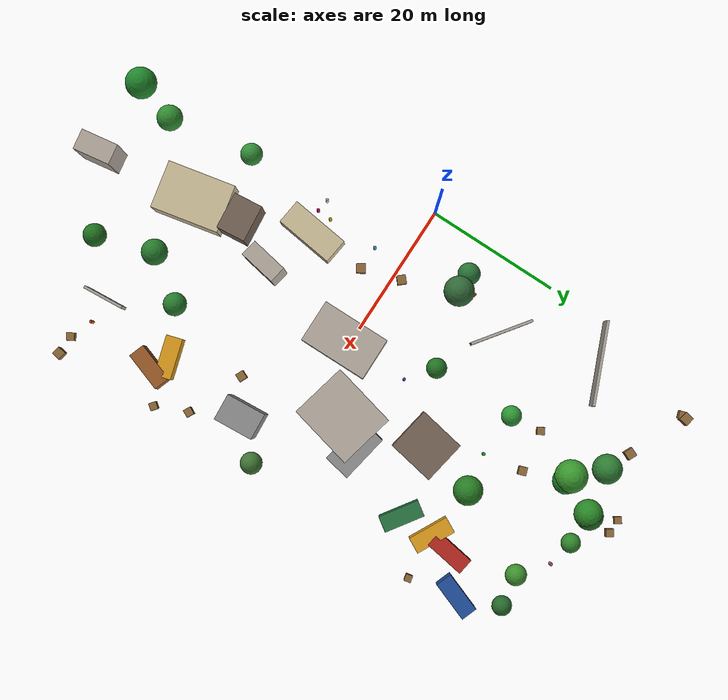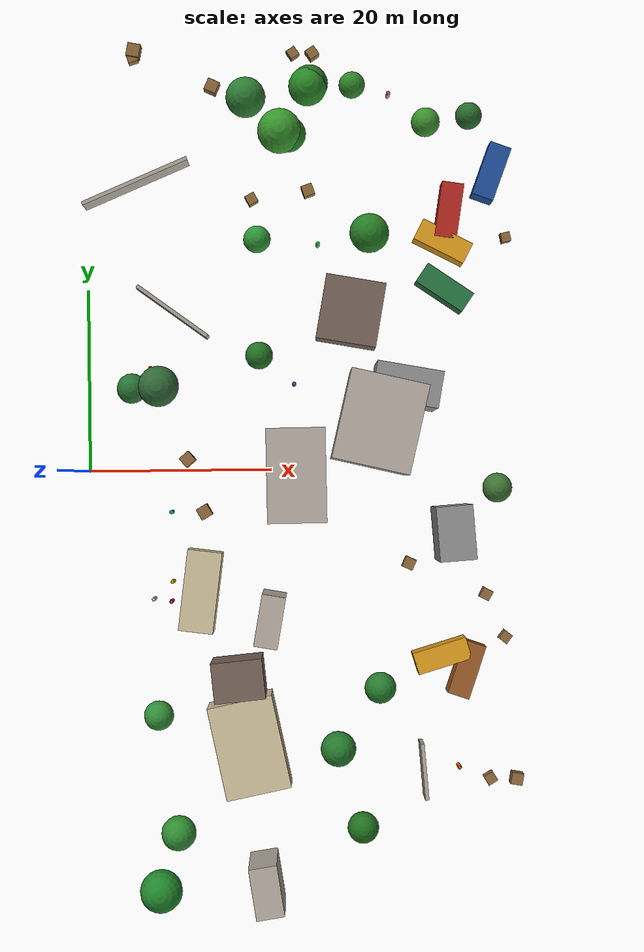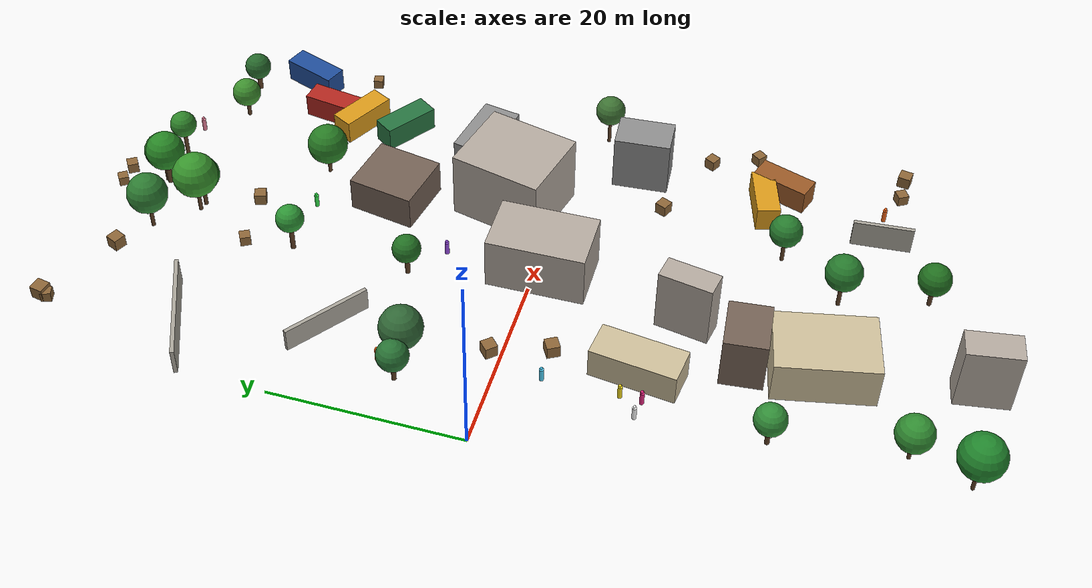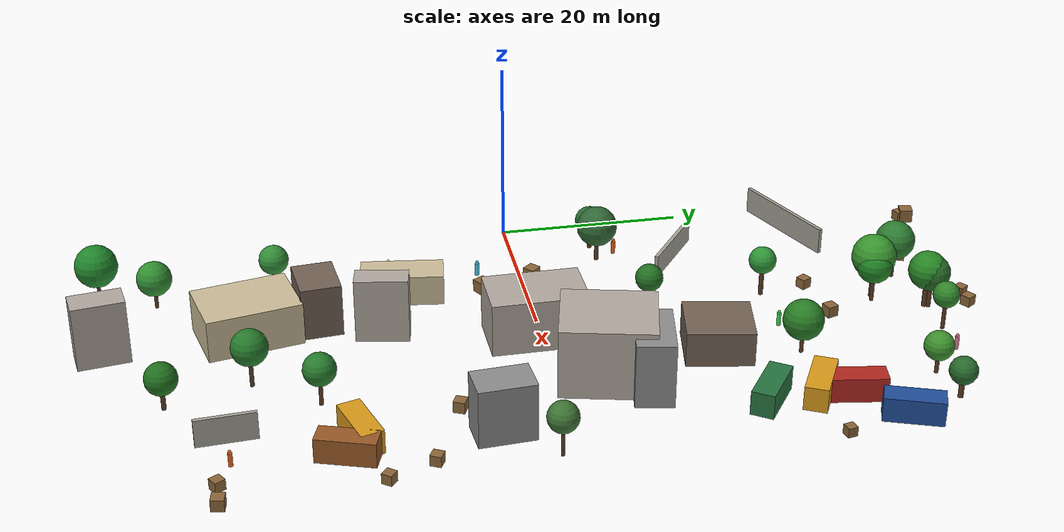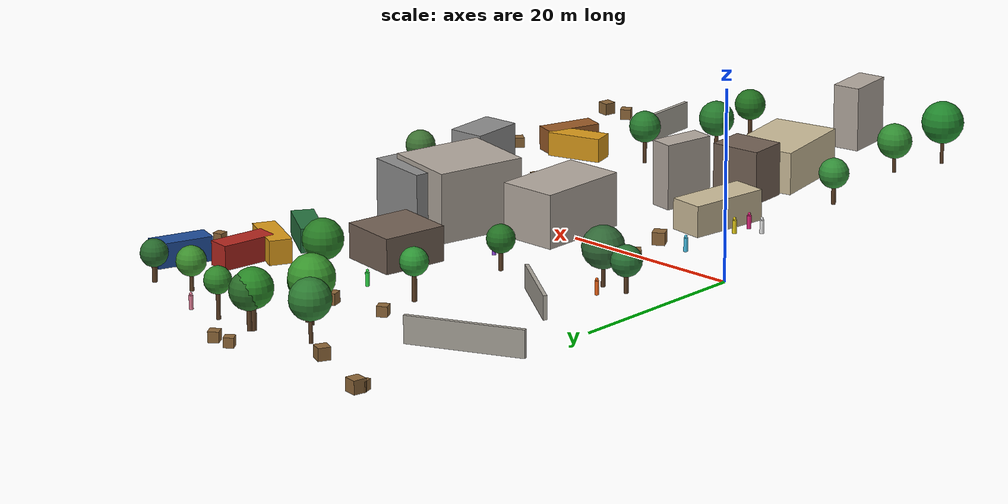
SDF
<sdf version="1.9">
 <world name="map_11">
  <model name="ground_plane">
   <static>true</static>
   <link name="link">
    <collision name="collision">
     <geometry><plane><normal>0 0 1</normal><size>1 1</size></plane></geometry>
    </collision>
   </link>
  </model>
  <model name="building_1">
   <static>true</static>
   <pose>12.19 -13.10 1.67 0 0 1.443</pose>
   <link name="link">
    <collision name="collision"><geometry><box><size>8.82 3.75 3.34</size></box></geometry></collision>
    <visual name="visual">
     <geometry><box><size>8.82 3.75 3.34</size></box></geometry>
     <material>
      <diffuse>0.800 0.740 0.600 1</diffuse>
      <ambient>0.640 0.592 0.480 1</ambient>
      <specular>0.05 0.05 0.05 1</specular>
     </material>
    </visual>
   </link>
  </model>
  <model name="building_2">
   <static>true</static>
   <pose>16.28 -22.47 2.86 0 0 0.096</pose>
   <link name="link">
    <collision name="collision"><geometry><box><size>5.48 4.30 5.73</size></box></geometry></collision>
    <visual name="visual">
     <geometry><box><size>5.48 4.30 5.73</size></box></geometry>
     <material>
      <diffuse>0.450 0.380 0.330 1</diffuse>
      <ambient>0.360 0.304 0.264 1</ambient>
      <specular>0.05 0.05 0.05 1</specular>
     </material>
    </visual>
   </link>
  </model>
  <model name="building_3">
   <static>true</static>
   <pose>28.80 17.04 1.87 0 0 1.393</pose>
   <link name="link">
    <collision name="collision"><geometry><box><size>7.01 6.54 3.75</size></box></geometry></collision>
    <visual name="visual">
     <geometry><box><size>7.01 6.54 3.75</size></box></geometry>
     <material>
      <diffuse>0.450 0.380 0.330 1</diffuse>
      <ambient>0.360 0.304 0.264 1</ambient>
      <specular>0.05 0.05 0.05 1</specular>
     </material>
    </visual>
   </link>
  </model>
  <model name="building_4">
   <static>true</static>
   <pose>31.67 4.91 3.74 0 0 -0.232</pose>
   <link name="link">
    <collision name="collision"><geometry><box><size>8.42 9.73 7.47</size></box></geometry></collision>
    <visual name="visual">
     <geometry><box><size>8.42 9.73 7.47</size></box></geometry>
     <material>
      <diffuse>0.700 0.660 0.620 1</diffuse>
      <ambient>0.560 0.528 0.496 1</ambient>
      <specular>0.05 0.05 0.05 1</specular>
     </material>
    </visual>
   </link>
  </model>
  <model name="building_8">
   <static>true</static>
   <pose>39.59 -7.01 3.09 0 0 0.072</pose>
   <link name="link">
    <collision name="collision"><geometry><box><size>3.92 5.84 6.18</size></box></geometry></collision>
    <visual name="visual">
     <geometry><box><size>3.92 5.84 6.18</size></box></geometry>
     <material>
      <diffuse>0.550 0.550 0.550 1</diffuse>
      <ambient>0.440 0.440 0.440 1</ambient>
      <specular>0.05 0.05 0.05 1</specular>
     </material>
    </visual>
   </link>
  </model>
  <model name="building_9">
   <static>true</static>
   <pose>17.34 -29.78 2.29 0 0 1.777</pose>
   <link name="link">
    <collision name="collision"><geometry><box><size>10.08 7.07 4.58</size></box></geometry></collision>
    <visual name="visual">
     <geometry><box><size>10.08 7.07 4.58</size></box></geometry>
     <material>
      <diffuse>0.800 0.740 0.600 1</diffuse>
      <ambient>0.640 0.592 0.480 1</ambient>
      <specular>0.05 0.05 0.05 1</specular>
     </material>
    </visual>
   </link>
  </model>
  <model name="building_11">
   <static>true</static>
   <pose>19.74 -16.07 3.52 0 0 1.393</pose>
   <link name="link">
    <collision name="collision"><geometry><box><size>5.56 2.55 7.03</size></box></geometry></collision>
    <visual name="visual">
     <geometry><box><size>5.56 2.55 7.03</size></box></geometry>
     <material>
      <diffuse>0.700 0.660 0.620 1</diffuse>
      <ambient>0.560 0.528 0.496 1</ambient>
      <specular>0.05 0.05 0.05 1</specular>
     </material>
    </visual>
   </link>
  </model>
  <model name="building_12">
   <static>true</static>
   <pose>19.10 -44.53 3.50 0 0 1.723</pose>
   <link name="link">
    <collision name="collision"><geometry><box><size>5.45 3.03 7.01</size></box></geometry></collision>
    <visual name="visual">
     <geometry><box><size>5.45 3.03 7.01</size></box></geometry>
     <material>
      <diffuse>0.700 0.660 0.620 1</diffuse>
      <ambient>0.560 0.528 0.496 1</ambient>
      <specular>0.05 0.05 0.05 1</specular>
     </material>
    </visual>
   </link>
  </model>
  <model name="building_13">
   <static>true</static>
   <pose>34.59 8.79 3.47 0 0 -0.181</pose>
   <link name="link">
    <collision name="collision"><geometry><box><size>7.13 3.96 6.95</size></box></geometry></collision>
    <visual name="visual">
     <geometry><box><size>7.13 3.96 6.95</size></box></geometry>
     <material>
      <diffuse>0.550 0.550 0.550 1</diffuse>
      <ambient>0.440 0.440 0.440 1</ambient>
      <specular>0.05 0.05 0.05 1</specular>
     </material>
    </visual>
   </link>
  </model>
  <model name="building_16">
   <static>true</static>
   <pose>22.71 -0.68 2.88 0 0 1.580</pose>
   <link name="link">
    <collision name="collision"><geometry><box><size>10.15 6.34 5.77</size></box></geometry></collision>
    <visual name="visual">
     <geometry><box><size>10.15 6.34 5.77</size></box></geometry>
     <material>
      <diffuse>0.700 0.660 0.620 1</diffuse>
      <ambient>0.560 0.528 0.496 1</ambient>
      <specular>0.05 0.05 0.05 1</specular>
     </material>
    </visual>
   </link>
  </model>
  <model name="wall_2">
   <static>true</static>
   <pose>5.51 31.46 1.45 0 0 0.400</pose>
   <link name="link">
    <collision name="collision"><geometry><box><size>12.35 0.40 2.90</size></box></geometry></collision>
    <visual name="visual">
     <geometry><box><size>12.35 0.40 2.90</size></box></geometry>
     <material>
      <diffuse>0.660 0.640 0.600 1</diffuse>
      <ambient>0.528 0.512 0.480 1</ambient>
      <specular>0.05 0.05 0.05 1</specular>
     </material>
    </visual>
   </link>
  </model>
  <model name="wall_7">
   <static>true</static>
   <pose>36.21 -32.88 1.49 0 0 1.646</pose>
   <link name="link">
    <collision name="collision"><geometry><box><size>6.10 0.40 2.98</size></box></geometry></collision>
    <visual name="visual">
     <geometry><box><size>6.10 0.40 2.98</size></box></geometry>
     <material>
      <diffuse>0.660 0.640 0.600 1</diffuse>
      <ambient>0.528 0.512 0.480 1</ambient>
      <specular>0.05 0.05 0.05 1</specular>
     </material>
    </visual>
   </link>
  </model>
  <model name="wall_9">
   <static>true</static>
   <pose>9.40 17.34 1.27 0 0 2.510</pose>
   <link name="link">
    <collision name="collision"><geometry><box><size>9.36 0.40 2.54</size></box></geometry></collision>
    <visual name="visual">
     <geometry><box><size>9.36 0.40 2.54</size></box></geometry>
     <material>
      <diffuse>0.660 0.640 0.600 1</diffuse>
      <ambient>0.528 0.512 0.480 1</ambient>
      <specular>0.05 0.05 0.05 1</specular>
     </material>
    </visual>
   </link>
  </model>
  <model name="container_5">
   <static>true</static>
   <pose>38.93 24.59 1.30 0 0 2.662</pose>
   <link name="link">
    <collision name="collision"><geometry><box><size>6.00 2.40 2.60</size></box></geometry></collision>
    <visual name="visual">
     <geometry><box><size>6.00 2.40 2.60</size></box></geometry>
     <material>
      <diffuse>0.850 0.600 0.100 1</diffuse>
      <ambient>0.680 0.480 0.080 1</ambient>
      <specular>0.05 0.05 0.05 1</specular>
     </material>
    </visual>
   </link>
  </model>
  <model name="container_6">
   <static>true</static>
   <pose>44.28 32.15 1.30 0 0 1.217</pose>
   <link name="link">
    <collision name="collision"><geometry><box><size>6.00 2.40 2.60</size></box></geometry></collision>
    <visual name="visual">
     <geometry><box><size>6.00 2.40 2.60</size></box></geometry>
     <material>
      <diffuse>0.120 0.300 0.600 1</diffuse>
      <ambient>0.096 0.240 0.480 1</ambient>
      <specular>0.05 0.05 0.05 1</specular>
     </material>
    </visual>
   </link>
  </model>
  <model name="container_8">
   <static>true</static>
   <pose>40.95 -21.92 1.30 0 0 1.240</pose>
   <link name="link">
    <collision name="collision"><geometry><box><size>6.00 2.40 2.60</size></box></geometry></collision>
    <visual name="visual">
     <geometry><box><size>6.00 2.40 2.60</size></box></geometry>
     <material>
      <diffuse>0.600 0.350 0.150 1</diffuse>
      <ambient>0.480 0.280 0.120 1</ambient>
      <specular>0.05 0.05 0.05 1</specular>
     </material>
    </visual>
   </link>
  </model>
  <model name="container_9">
   <static>true</static>
   <pose>38.29 -20.42 1.30 0 0 0.291</pose>
   <link name="link">
    <collision name="collision"><geometry><box><size>6.00 2.40 2.60</size></box></geometry></collision>
    <visual name="visual">
     <geometry><box><size>6.00 2.40 2.60</size></box></geometry>
     <material>
      <diffuse>0.850 0.600 0.100 1</diffuse>
      <ambient>0.680 0.480 0.080 1</ambient>
      <specular>0.05 0.05 0.05 1</specular>
     </material>
    </visual>
   </link>
  </model>
  <model name="container_10">
   <static>true</static>
   <pose>39.63 27.98 1.30 0 0 1.417</pose>
   <link name="link">
    <collision name="collision"><geometry><box><size>6.00 2.40 2.60</size></box></geometry></collision>
    <visual name="visual">
     <geometry><box><size>6.00 2.40 2.60</size></box></geometry>
     <material>
      <diffuse>0.700 0.150 0.120 1</diffuse>
      <ambient>0.560 0.120 0.096 1</ambient>
      <specular>0.05 0.05 0.05 1</specular>
     </material>
    </visual>
   </link>
  </model>
  <model name="container_11">
   <static>true</static>
   <pose>39.05 19.55 1.30 0 0 2.541</pose>
   <link name="link">
    <collision name="collision"><geometry><box><size>6.00 2.40 2.60</size></box></geometry></collision>
    <visual name="visual">
     <geometry><box><size>6.00 2.40 2.60</size></box></geometry>
     <material>
      <diffuse>0.150 0.450 0.250 1</diffuse>
      <ambient>0.120 0.360 0.200 1</ambient>
      <specular>0.05 0.05 0.05 1</specular>
     </material>
    </visual>
   </link>
  </model>
  <model name="crate_0">
   <static>true</static>
   <pose>5.35 46.17 0.70 0 0 2.957</pose>
   <link name="link">
    <collision name="collision"><geometry><box><size>1.41 1.41 1.41</size></box></geometry></collision>
    <visual name="visual">
     <geometry><box><size>1.41 1.41 1.41</size></box></geometry>
     <material>
      <diffuse>0.550 0.400 0.220 1</diffuse>
      <ambient>0.440 0.320 0.176 1</ambient>
      <specular>0.05 0.05 0.05 1</specular>
     </material>
    </visual>
   </link>
  </model>
  <model name="crate_1">
   <static>true</static>
   <pose>10.81 1.24 0.66 0 0 2.306</pose>
   <link name="link">
    <collision name="collision"><geometry><box><size>1.32 1.32 1.32</size></box></geometry></collision>
    <visual name="visual">
     <geometry><box><size>1.32 1.32 1.32</size></box></geometry>
     <material>
      <diffuse>0.550 0.400 0.220 1</diffuse>
      <ambient>0.440 0.320 0.176 1</ambient>
      <specular>0.05 0.05 0.05 1</specular>
     </material>
    </visual>
   </link>
  </model>
  <model name="crate_4">
   <static>true</static>
   <pose>45.39 -18.60 0.55 0 0 2.481</pose>
   <link name="link">
    <collision name="collision"><geometry><box><size>1.10 1.10 1.10</size></box></geometry></collision>
    <visual name="visual">
     <geometry><box><size>1.10 1.10 1.10</size></box></geometry>
     <material>
      <diffuse>0.550 0.400 0.220 1</diffuse>
      <ambient>0.440 0.320 0.176 1</ambient>
      <specular>0.05 0.05 0.05 1</specular>
     </material>
    </visual>
   </link>
  </model>
  <model name="crate_6">
   <static>true</static>
   <pose>46.44 -34.09 0.64 0 0 1.392</pose>
   <link name="link">
    <collision name="collision"><geometry><box><size>1.28 1.28 1.28</size></box></geometry></collision>
    <visual name="visual">
     <geometry><box><size>1.28 1.28 1.28</size></box></geometry>
     <material>
      <diffuse>0.550 0.400 0.220 1</diffuse>
      <ambient>0.440 0.320 0.176 1</ambient>
      <specular>0.05 0.05 0.05 1</specular>
     </material>
    </visual>
   </link>
  </model>
  <model name="crate_8">
   <static>true</static>
   <pose>43.33 -13.89 0.58 0 0 1.086</pose>
   <link name="link">
    <collision name="collision"><geometry><box><size>1.15 1.15 1.15</size></box></geometry></collision>
    <visual name="visual">
     <geometry><box><size>1.15 1.15 1.15</size></box></geometry>
     <material>
      <diffuse>0.550 0.400 0.220 1</diffuse>
      <ambient>0.440 0.320 0.176 1</ambient>
      <specular>0.05 0.05 0.05 1</specular>
     </material>
    </visual>
   </link>
  </model>
  <model name="crate_9">
   <static>true</static>
   <pose>12.60 -4.55 0.68 0 0 0.526</pose>
   <link name="link">
    <collision name="collision"><geometry><box><size>1.35 1.35 1.35</size></box></geometry></collision>
    <visual name="visual">
     <geometry><box><size>1.35 1.35 1.35</size></box></geometry>
     <material>
      <diffuse>0.550 0.400 0.220 1</diffuse>
      <ambient>0.440 0.320 0.176 1</ambient>
      <specular>0.05 0.05 0.05 1</specular>
     </material>
    </visual>
   </link>
  </model>
  <model name="crate_10">
   <static>true</static>
   <pose>24.31 30.61 0.61 0 0 1.906</pose>
   <link name="link">
    <collision name="collision"><geometry><box><size>1.22 1.22 1.22</size></box></geometry></collision>
    <visual name="visual">
     <geometry><box><size>1.22 1.22 1.22</size></box></geometry>
     <material>
      <diffuse>0.550 0.400 0.220 1</diffuse>
      <ambient>0.440 0.320 0.176 1</ambient>
      <specular>0.05 0.05 0.05 1</specular>
     </material>
    </visual>
   </link>
  </model>
  <model name="crate_12">
   <static>true</static>
   <pose>22.80 45.77 0.52 0 0 0.602</pose>
   <link name="link">
    <collision name="collision"><geometry><box><size>1.04 1.04 1.04</size></box></geometry></collision>
    <visual name="visual">
     <geometry><box><size>1.04 1.04 1.04</size></box></geometry>
     <material>
      <diffuse>0.550 0.400 0.220 1</diffuse>
      <ambient>0.440 0.320 0.176 1</ambient>
      <specular>0.05 0.05 0.05 1</specular>
     </material>
    </visual>
   </link>
  </model>
  <model name="crate_13">
   <static>true</static>
   <pose>18.11 29.73 0.56 0 0 0.511</pose>
   <link name="link">
    <collision name="collision"><geometry><box><size>1.11 1.11 1.11</size></box></geometry></collision>
    <visual name="visual">
     <geometry><box><size>1.11 1.11 1.11</size></box></geometry>
     <material>
      <diffuse>0.550 0.400 0.220 1</diffuse>
      <ambient>0.440 0.320 0.176 1</ambient>
      <specular>0.05 0.05 0.05 1</specular>
     </material>
    </visual>
   </link>
  </model>
  <model name="crate_16">
   <static>true</static>
   <pose>13.90 42.16 0.66 0 0 1.143</pose>
   <link name="link">
    <collision name="collision"><geometry><box><size>1.32 1.32 1.32</size></box></geometry></collision>
    <visual name="visual">
     <geometry><box><size>1.32 1.32 1.32</size></box></geometry>
     <material>
      <diffuse>0.550 0.400 0.220 1</diffuse>
      <ambient>0.440 0.320 0.176 1</ambient>
      <specular>0.05 0.05 0.05 1</specular>
     </material>
    </visual>
   </link>
  </model>
  <model name="crate_17">
   <static>true</static>
   <pose>5.16 45.47 0.54 0 0 0.297</pose>
   <link name="link">
    <collision name="collision"><geometry><box><size>1.08 1.08 1.08</size></box></geometry></collision>
    <visual name="visual">
     <geometry><box><size>1.08 1.08 1.08</size></box></geometry>
     <material>
      <diffuse>0.550 0.400 0.220 1</diffuse>
      <ambient>0.440 0.320 0.176 1</ambient>
      <specular>0.05 0.05 0.05 1</specular>
     </material>
    </visual>
   </link>
  </model>
  <model name="crate_18">
   <static>true</static>
   <pose>43.57 -34.06 0.57 0 0 0.537</pose>
   <link name="link">
    <collision name="collision"><geometry><box><size>1.13 1.13 1.13</size></box></geometry></collision>
    <visual name="visual">
     <geometry><box><size>1.13 1.13 1.13</size></box></geometry>
     <material>
      <diffuse>0.550 0.400 0.220 1</diffuse>
      <ambient>0.440 0.320 0.176 1</ambient>
      <specular>0.05 0.05 0.05 1</specular>
     </material>
    </visual>
   </link>
  </model>
  <model name="crate_21">
   <static>true</static>
   <pose>45.93 25.23 0.51 0 0 0.212</pose>
   <link name="link">
    <collision name="collision"><geometry><box><size>1.02 1.02 1.02</size></box></geometry></collision>
    <visual name="visual">
     <geometry><box><size>1.02 1.02 1.02</size></box></geometry>
     <material>
      <diffuse>0.550 0.400 0.220 1</diffuse>
      <ambient>0.440 0.320 0.176 1</ambient>
      <specular>0.05 0.05 0.05 1</specular>
     </material>
    </visual>
   </link>
  </model>
  <model name="crate_22">
   <static>true</static>
   <pose>34.94 -10.41 0.61 0 0 1.142</pose>
   <link name="link">
    <collision name="collision"><geometry><box><size>1.22 1.22 1.22</size></box></geometry></collision>
    <visual name="visual">
     <geometry><box><size>1.22 1.22 1.22</size></box></geometry>
     <material>
      <diffuse>0.550 0.400 0.220 1</diffuse>
      <ambient>0.440 0.320 0.176 1</ambient>
      <specular>0.05 0.05 0.05 1</specular>
     </material>
    </visual>
   </link>
  </model>
  <model name="crate_24">
   <static>true</static>
   <pose>24.94 45.72 0.56 0 0 2.154</pose>
   <link name="link">
    <collision name="collision"><geometry><box><size>1.13 1.13 1.13</size></box></geometry></collision>
    <visual name="visual">
     <geometry><box><size>1.13 1.13 1.13</size></box></geometry>
     <material>
      <diffuse>0.550 0.400 0.220 1</diffuse>
      <ambient>0.440 0.320 0.176 1</ambient>
      <specular>0.05 0.05 0.05 1</specular>
     </material>
    </visual>
   </link>
  </model>
  <model name="tree_1">
   <static>true</static>
   <pose>37.08 37.37 0 0 0 0</pose>
   <link name="link">
    <collision name="trunk">
     <pose>0 0 1.02 0 0 0</pose>
     <geometry><cylinder><radius>0.21</radius><length>2.04</length></cylinder></geometry>
    </collision>
    <visual name="trunk">
     <pose>0 0 1.02 0 0 0</pose>
     <geometry><cylinder><radius>0.21</radius><length>2.04</length></cylinder></geometry>
     <material>
      <diffuse>0.360 0.240 0.140 1</diffuse>
      <ambient>0.288 0.192 0.112 1</ambient>
      <specular>0.05 0.05 0.05 1</specular>
     </material>
    </visual>
    <collision name="canopy">
     <pose>0 0 3.12 0 0 0</pose>
     <geometry><sphere><radius>1.54</radius></sphere></geometry>
    </collision>
    <visual name="canopy">
     <pose>0 0 3.12 0 0 0</pose>
     <geometry><sphere><radius>1.54</radius></sphere></geometry>
     <material>
      <diffuse>0.242 0.566 0.183 1</diffuse>
      <ambient>0.193 0.453 0.147 1</ambient>
      <specular>0.05 0.05 0.05 1</specular>
     </material>
    </visual>
   </link>
  </model>
  <model name="tree_3">
   <static>true</static>
   <pose>24.60 41.42 0 0 0 0</pose>
   <link name="link">
    <collision name="trunk">
     <pose>0 0 1.35 0 0 0</pose>
     <geometry><cylinder><radius>0.25</radius><length>2.70</length></cylinder></geometry>
    </collision>
    <visual name="trunk">
     <pose>0 0 1.35 0 0 0</pose>
     <geometry><cylinder><radius>0.25</radius><length>2.70</length></cylinder></geometry>
     <material>
      <diffuse>0.360 0.240 0.140 1</diffuse>
      <ambient>0.288 0.192 0.112 1</ambient>
      <specular>0.05 0.05 0.05 1</specular>
     </material>
    </visual>
    <collision name="canopy">
     <pose>0 0 4.08 0 0 0</pose>
     <geometry><sphere><radius>1.97</radius></sphere></geometry>
    </collision>
    <visual name="canopy">
     <pose>0 0 4.08 0 0 0</pose>
     <geometry><sphere><radius>1.97</radius></sphere></geometry>
     <material>
      <diffuse>0.159 0.425 0.154 1</diffuse>
      <ambient>0.127 0.340 0.123 1</ambient>
      <specular>0.05 0.05 0.05 1</specular>
     </material>
    </visual>
   </link>
  </model>
  <model name="tree_4">
   <static>true</static>
   <pose>26.88 -29.96 0 0 0 0</pose>
   <link name="link">
    <collision name="trunk">
     <pose>0 0 1.56 0 0 0</pose>
     <geometry><cylinder><radius>0.21</radius><length>3.12</length></cylinder></geometry>
    </collision>
    <visual name="trunk">
     <pose>0 0 1.56 0 0 0</pose>
     <geometry><cylinder><radius>0.21</radius><length>3.12</length></cylinder></geometry>
     <material>
      <diffuse>0.360 0.240 0.140 1</diffuse>
      <ambient>0.288 0.192 0.112 1</ambient>
      <specular>0.05 0.05 0.05 1</specular>
     </material>
    </visual>
    <collision name="canopy">
     <pose>0 0 4.44 0 0 0</pose>
     <geometry><sphere><radius>1.89</radius></sphere></geometry>
    </collision>
    <visual name="canopy">
     <pose>0 0 4.44 0 0 0</pose>
     <geometry><sphere><radius>1.89</radius></sphere></geometry>
     <material>
      <diffuse>0.149 0.479 0.174 1</diffuse>
      <ambient>0.119 0.383 0.139 1</ambient>
      <specular>0.05 0.05 0.05 1</specular>
     </material>
    </visual>
   </link>
  </model>
  <model name="tree_5">
   <static>true</static>
   <pose>8.02 9.05 0 0 0 0</pose>
   <link name="link">
    <collision name="trunk">
     <pose>0 0 1.30 0 0 0</pose>
     <geometry><cylinder><radius>0.22</radius><length>2.59</length></cylinder></geometry>
    </collision>
    <visual name="trunk">
     <pose>0 0 1.30 0 0 0</pose>
     <geometry><cylinder><radius>0.22</radius><length>2.59</length></cylinder></geometry>
     <material>
      <diffuse>0.360 0.240 0.140 1</diffuse>
      <ambient>0.288 0.192 0.112 1</ambient>
      <specular>0.05 0.05 0.05 1</specular>
     </material>
    </visual>
    <collision name="canopy">
     <pose>0 0 4.14 0 0 0</pose>
     <geometry><sphere><radius>2.20</radius></sphere></geometry>
    </collision>
    <visual name="canopy">
     <pose>0 0 4.14 0 0 0</pose>
     <geometry><sphere><radius>2.20</radius></sphere></geometry>
     <material>
      <diffuse>0.192 0.410 0.215 1</diffuse>
      <ambient>0.153 0.328 0.172 1</ambient>
      <specular>0.05 0.05 0.05 1</specular>
     </material>
    </visual>
   </link>
  </model>
  <model name="tree_9">
   <static>true</static>
   <pose>7.83 -44.89 0 0 0 0</pose>
   <link name="link">
    <collision name="trunk">
     <pose>0 0 1.50 0 0 0</pose>
     <geometry><cylinder><radius>0.19</radius><length>3.00</length></cylinder></geometry>
    </collision>
    <visual name="trunk">
     <pose>0 0 1.50 0 0 0</pose>
     <geometry><cylinder><radius>0.19</radius><length>3.00</length></cylinder></geometry>
     <material>
      <diffuse>0.360 0.240 0.140 1</diffuse>
      <ambient>0.288 0.192 0.112 1</ambient>
      <specular>0.05 0.05 0.05 1</specular>
     </material>
    </visual>
    <collision name="canopy">
     <pose>0 0 4.59 0 0 0</pose>
     <geometry><sphere><radius>2.27</radius></sphere></geometry>
    </collision>
    <visual name="canopy">
     <pose>0 0 4.59 0 0 0</pose>
     <geometry><sphere><radius>2.27</radius></sphere></geometry>
     <material>
      <diffuse>0.129 0.526 0.175 1</diffuse>
      <ambient>0.103 0.421 0.140 1</ambient>
      <specular>0.05 0.05 0.05 1</specular>
     </material>
    </visual>
   </link>
  </model>
  <model name="tree_14">
   <static>true</static>
   <pose>9.66 -39.00 0 0 0 0</pose>
   <link name="link">
    <collision name="trunk">
     <pose>0 0 1.09 0 0 0</pose>
     <geometry><cylinder><radius>0.19</radius><length>2.17</length></cylinder></geometry>
    </collision>
    <visual name="trunk">
     <pose>0 0 1.09 0 0 0</pose>
     <geometry><cylinder><radius>0.19</radius><length>2.17</length></cylinder></geometry>
     <material>
      <diffuse>0.360 0.240 0.140 1</diffuse>
      <ambient>0.288 0.192 0.112 1</ambient>
      <specular>0.05 0.05 0.05 1</specular>
     </material>
    </visual>
    <collision name="canopy">
     <pose>0 0 3.48 0 0 0</pose>
     <geometry><sphere><radius>1.87</radius></sphere></geometry>
    </collision>
    <visual name="canopy">
     <pose>0 0 3.48 0 0 0</pose>
     <geometry><sphere><radius>1.87</radius></sphere></geometry>
     <material>
      <diffuse>0.192 0.555 0.196 1</diffuse>
      <ambient>0.154 0.444 0.157 1</ambient>
      <specular>0.05 0.05 0.05 1</specular>
     </material>
    </visual>
   </link>
  </model>
  <model name="tree_15">
   <static>true</static>
   <pose>18.84 12.31 0 0 0 0</pose>
   <link name="link">
    <collision name="trunk">
     <pose>0 0 1.14 0 0 0</pose>
     <geometry><cylinder><radius>0.25</radius><length>2.29</length></cylinder></geometry>
    </collision>
    <visual name="trunk">
     <pose>0 0 1.14 0 0 0</pose>
     <geometry><cylinder><radius>0.25</radius><length>2.29</length></cylinder></geometry>
     <material>
      <diffuse>0.360 0.240 0.140 1</diffuse>
      <ambient>0.288 0.192 0.112 1</ambient>
      <specular>0.05 0.05 0.05 1</specular>
     </material>
    </visual>
    <collision name="canopy">
     <pose>0 0 3.32 0 0 0</pose>
     <geometry><sphere><radius>1.48</radius></sphere></geometry>
    </collision>
    <visual name="canopy">
     <pose>0 0 3.32 0 0 0</pose>
     <geometry><sphere><radius>1.48</radius></sphere></geometry>
     <material>
      <diffuse>0.137 0.445 0.140 1</diffuse>
      <ambient>0.109 0.356 0.112 1</ambient>
      <specular>0.05 0.05 0.05 1</specular>
     </material>
    </visual>
   </link>
  </model>
  <model name="tree_17">
   <static>true</static>
   <pose>44.20 -2.22 0 0 0 0</pose>
   <link name="link">
    <collision name="trunk">
     <pose>0 0 1.59 0 0 0</pose>
     <geometry><cylinder><radius>0.18</radius><length>3.18</length></cylinder></geometry>
    </collision>
    <visual name="trunk">
     <pose>0 0 1.59 0 0 0</pose>
     <geometry><cylinder><radius>0.18</radius><length>3.18</length></cylinder></geometry>
     <material>
      <diffuse>0.360 0.240 0.140 1</diffuse>
      <ambient>0.288 0.192 0.112 1</ambient>
      <specular>0.05 0.05 0.05 1</specular>
     </material>
    </visual>
    <collision name="canopy">
     <pose>0 0 4.28 0 0 0</pose>
     <geometry><sphere><radius>1.58</radius></sphere></geometry>
    </collision>
    <visual name="canopy">
     <pose>0 0 4.28 0 0 0</pose>
     <geometry><sphere><radius>1.58</radius></sphere></geometry>
     <material>
      <diffuse>0.243 0.453 0.203 1</diffuse>
      <ambient>0.194 0.362 0.163 1</ambient>
      <specular>0.05 0.05 0.05 1</specular>
     </material>
    </visual>
   </link>
  </model>
  <model name="tree_19">
   <static>true</static>
   <pose>17.72 39.91 0 0 0 0</pose>
   <link name="link">
    <collision name="trunk">
     <pose>0 0 1.48 0 0 0</pose>
     <geometry><cylinder><radius>0.20</radius><length>2.97</length></cylinder></geometry>
    </collision>
    <visual name="trunk">
     <pose>0 0 1.48 0 0 0</pose>
     <geometry><cylinder><radius>0.20</radius><length>2.97</length></cylinder></geometry>
     <material>
      <diffuse>0.360 0.240 0.140 1</diffuse>
      <ambient>0.288 0.192 0.112 1</ambient>
      <specular>0.05 0.05 0.05 1</specular>
     </material>
    </visual>
    <collision name="canopy">
     <pose>0 0 4.46 0 0 0</pose>
     <geometry><sphere><radius>2.13</radius></sphere></geometry>
    </collision>
    <visual name="canopy">
     <pose>0 0 4.46 0 0 0</pose>
     <geometry><sphere><radius>2.13</radius></sphere></geometry>
     <material>
      <diffuse>0.177 0.488 0.196 1</diffuse>
      <ambient>0.142 0.391 0.157 1</ambient>
      <specular>0.05 0.05 0.05 1</specular>
     </material>
    </visual>
   </link>
  </model>
  <model name="tree_21">
   <static>true</static>
   <pose>30.85 25.32 0 0 0 0</pose>
   <link name="link">
    <collision name="trunk">
     <pose>0 0 1.15 0 0 0</pose>
     <geometry><cylinder><radius>0.20</radius><length>2.31</length></cylinder></geometry>
    </collision>
    <visual name="trunk">
     <pose>0 0 1.15 0 0 0</pose>
     <geometry><cylinder><radius>0.20</radius><length>2.31</length></cylinder></geometry>
     <material>
      <diffuse>0.360 0.240 0.140 1</diffuse>
      <ambient>0.288 0.192 0.112 1</ambient>
      <specular>0.05 0.05 0.05 1</specular>
     </material>
    </visual>
    <collision name="canopy">
     <pose>0 0 3.79 0 0 0</pose>
     <geometry><sphere><radius>2.12</radius></sphere></geometry>
    </collision>
    <visual name="canopy">
     <pose>0 0 3.79 0 0 0</pose>
     <geometry><sphere><radius>2.12</radius></sphere></geometry>
     <material>
      <diffuse>0.156 0.489 0.143 1</diffuse>
      <ambient>0.125 0.391 0.114 1</ambient>
      <specular>0.05 0.05 0.05 1</specular>
     </material>
    </visual>
   </link>
  </model>
  <model name="tree_28">
   <static>true</static>
   <pose>31.46 -23.54 0 0 0 0</pose>
   <link name="link">
    <collision name="trunk">
     <pose>0 0 1.43 0 0 0</pose>
     <geometry><cylinder><radius>0.20</radius><length>2.85</length></cylinder></geometry>
    </collision>
    <visual name="trunk">
     <pose>0 0 1.43 0 0 0</pose>
     <geometry><cylinder><radius>0.20</radius><length>2.85</length></cylinder></geometry>
     <material>
      <diffuse>0.360 0.240 0.140 1</diffuse>
      <ambient>0.288 0.192 0.112 1</ambient>
      <specular>0.05 0.05 0.05 1</specular>
     </material>
    </visual>
    <collision name="canopy">
     <pose>0 0 4.03 0 0 0</pose>
     <geometry><sphere><radius>1.69</radius></sphere></geometry>
    </collision>
    <visual name="canopy">
     <pose>0 0 4.03 0 0 0</pose>
     <geometry><sphere><radius>1.69</radius></sphere></geometry>
     <material>
      <diffuse>0.153 0.489 0.181 1</diffuse>
      <ambient>0.122 0.391 0.145 1</ambient>
      <specular>0.05 0.05 0.05 1</specular>
     </material>
    </visual>
   </link>
  </model>
  <model name="tree_29">
   <static>true</static>
   <pose>7.64 -26.36 0 0 0 0</pose>
   <link name="link">
    <collision name="trunk">
     <pose>0 0 1.12 0 0 0</pose>
     <geometry><cylinder><radius>0.23</radius><length>2.24</length></cylinder></geometry>
    </collision>
    <visual name="trunk">
     <pose>0 0 1.12 0 0 0</pose>
     <geometry><cylinder><radius>0.23</radius><length>2.24</length></cylinder></geometry>
     <material>
      <diffuse>0.360 0.240 0.140 1</diffuse>
      <ambient>0.288 0.192 0.112 1</ambient>
      <specular>0.05 0.05 0.05 1</specular>
     </material>
    </visual>
    <collision name="canopy">
     <pose>0 0 3.36 0 0 0</pose>
     <geometry><sphere><radius>1.60</radius></sphere></geometry>
    </collision>
    <visual name="canopy">
     <pose>0 0 3.36 0 0 0</pose>
     <geometry><sphere><radius>1.60</radius></sphere></geometry>
     <material>
      <diffuse>0.196 0.559 0.220 1</diffuse>
      <ambient>0.157 0.447 0.176 1</ambient>
      <specular>0.05 0.05 0.05 1</specular>
     </material>
    </visual>
   </link>
  </model>
  <model name="tree_30">
   <static>true</static>
   <pose>29.48 -38.61 0 0 0 0</pose>
   <link name="link">
    <collision name="trunk">
     <pose>0 0 1.15 0 0 0</pose>
     <geometry><cylinder><radius>0.23</radius><length>2.31</length></cylinder></geometry>
    </collision>
    <visual name="trunk">
     <pose>0 0 1.15 0 0 0</pose>
     <geometry><cylinder><radius>0.23</radius><length>2.31</length></cylinder></geometry>
     <material>
      <diffuse>0.360 0.240 0.140 1</diffuse>
      <ambient>0.288 0.192 0.112 1</ambient>
      <specular>0.05 0.05 0.05 1</specular>
     </material>
    </visual>
    <collision name="canopy">
     <pose>0 0 3.49 0 0 0</pose>
     <geometry><sphere><radius>1.68</radius></sphere></geometry>
    </collision>
    <visual name="canopy">
     <pose>0 0 3.49 0 0 0</pose>
     <geometry><sphere><radius>1.68</radius></sphere></geometry>
     <material>
      <diffuse>0.130 0.441 0.123 1</diffuse>
      <ambient>0.104 0.353 0.098 1</ambient>
      <specular>0.05 0.05 0.05 1</specular>
     </material>
    </visual>
   </link>
  </model>
  <model name="tree_31">
   <static>true</static>
   <pose>22.22 35.97 0 0 0 0</pose>
   <link name="link">
    <collision name="trunk">
     <pose>0 0 1.44 0 0 0</pose>
     <geometry><cylinder><radius>0.21</radius><length>2.87</length></cylinder></geometry>
    </collision>
    <visual name="trunk">
     <pose>0 0 1.44 0 0 0</pose>
     <geometry><cylinder><radius>0.21</radius><length>2.87</length></cylinder></geometry>
     <material>
      <diffuse>0.360 0.240 0.140 1</diffuse>
      <ambient>0.288 0.192 0.112 1</ambient>
      <specular>0.05 0.05 0.05 1</specular>
     </material>
    </visual>
    <collision name="canopy">
     <pose>0 0 4.21 0 0 0</pose>
     <geometry><sphere><radius>1.92</radius></sphere></geometry>
    </collision>
    <visual name="canopy">
     <pose>0 0 4.21 0 0 0</pose>
     <geometry><sphere><radius>1.92</radius></sphere></geometry>
     <material>
      <diffuse>0.135 0.529 0.149 1</diffuse>
      <ambient>0.108 0.423 0.120 1</ambient>
      <specular>0.05 0.05 0.05 1</specular>
     </material>
    </visual>
   </link>
  </model>
  <model name="tree_35">
   <static>true</static>
   <pose>41.75 38.02 0 0 0 0</pose>
   <link name="link">
    <collision name="trunk">
     <pose>0 0 1.02 0 0 0</pose>
     <geometry><cylinder><radius>0.27</radius><length>2.04</length></cylinder></geometry>
    </collision>
    <visual name="trunk">
     <pose>0 0 1.02 0 0 0</pose>
     <geometry><cylinder><radius>0.27</radius><length>2.04</length></cylinder></geometry>
     <material>
      <diffuse>0.360 0.240 0.140 1</diffuse>
      <ambient>0.288 0.192 0.112 1</ambient>
      <specular>0.05 0.05 0.05 1</specular>
     </material>
    </visual>
    <collision name="canopy">
     <pose>0 0 3.04 0 0 0</pose>
     <geometry><sphere><radius>1.43</radius></sphere></geometry>
    </collision>
    <visual name="canopy">
     <pose>0 0 3.04 0 0 0</pose>
     <geometry><sphere><radius>1.43</radius></sphere></geometry>
     <material>
      <diffuse>0.155 0.415 0.174 1</diffuse>
      <ambient>0.124 0.332 0.139 1</ambient>
      <specular>0.05 0.05 0.05 1</specular>
     </material>
    </visual>
   </link>
  </model>
  <model name="tree_37">
   <static>true</static>
   <pose>21.33 36.17 0 0 0 0</pose>
   <link name="link">
    <collision name="trunk">
     <pose>0 0 1.58 0 0 0</pose>
     <geometry><cylinder><radius>0.20</radius><length>3.16</length></cylinder></geometry>
    </collision>
    <visual name="trunk">
     <pose>0 0 1.58 0 0 0</pose>
     <geometry><cylinder><radius>0.20</radius><length>3.16</length></cylinder></geometry>
     <material>
      <diffuse>0.360 0.240 0.140 1</diffuse>
      <ambient>0.288 0.192 0.112 1</ambient>
      <specular>0.05 0.05 0.05 1</specular>
     </material>
    </visual>
    <collision name="canopy">
     <pose>0 0 4.82 0 0 0</pose>
     <geometry><sphere><radius>2.37</radius></sphere></geometry>
    </collision>
    <visual name="canopy">
     <pose>0 0 4.82 0 0 0</pose>
     <geometry><sphere><radius>2.37</radius></sphere></geometry>
     <material>
      <diffuse>0.221 0.588 0.178 1</diffuse>
      <ambient>0.177 0.470 0.142 1</ambient>
      <specular>0.05 0.05 0.05 1</specular>
     </material>
    </visual>
   </link>
  </model>
  <model name="tree_38">
   <static>true</static>
   <pose>24.39 41.07 0 0 0 0</pose>
   <link name="link">
    <collision name="trunk">
     <pose>0 0 1.43 0 0 0</pose>
     <geometry><cylinder><radius>0.29</radius><length>2.85</length></cylinder></geometry>
    </collision>
    <visual name="trunk">
     <pose>0 0 1.43 0 0 0</pose>
     <geometry><cylinder><radius>0.29</radius><length>2.85</length></cylinder></geometry>
     <material>
      <diffuse>0.360 0.240 0.140 1</diffuse>
      <ambient>0.288 0.192 0.112 1</ambient>
      <specular>0.05 0.05 0.05 1</specular>
     </material>
    </visual>
    <collision name="canopy">
     <pose>0 0 4.29 0 0 0</pose>
     <geometry><sphere><radius>2.06</radius></sphere></geometry>
    </collision>
    <visual name="canopy">
     <pose>0 0 4.29 0 0 0</pose>
     <geometry><sphere><radius>2.06</radius></sphere></geometry>
     <material>
      <diffuse>0.158 0.531 0.149 1</diffuse>
      <ambient>0.126 0.424 0.119 1</ambient>
      <specular>0.05 0.05 0.05 1</specular>
     </material>
    </visual>
   </link>
  </model>
  <model name="tree_40">
   <static>true</static>
   <pose>5.10 8.90 0 0 0 0</pose>
   <link name="link">
    <collision name="trunk">
     <pose>0 0 1.10 0 0 0</pose>
     <geometry><cylinder><radius>0.24</radius><length>2.21</length></cylinder></geometry>
    </collision>
    <visual name="trunk">
     <pose>0 0 1.10 0 0 0</pose>
     <geometry><cylinder><radius>0.24</radius><length>2.21</length></cylinder></geometry>
     <material>
      <diffuse>0.360 0.240 0.140 1</diffuse>
      <ambient>0.288 0.192 0.112 1</ambient>
      <specular>0.05 0.05 0.05 1</specular>
     </material>
    </visual>
    <collision name="canopy">
     <pose>0 0 3.34 0 0 0</pose>
     <geometry><sphere><radius>1.62</radius></sphere></geometry>
    </collision>
    <visual name="canopy">
     <pose>0 0 3.34 0 0 0</pose>
     <geometry><sphere><radius>1.62</radius></sphere></geometry>
     <material>
      <diffuse>0.161 0.456 0.210 1</diffuse>
      <ambient>0.129 0.365 0.168 1</ambient>
      <specular>0.05 0.05 0.05 1</specular>
     </material>
    </visual>
   </link>
  </model>
  <model name="tree_41">
   <static>true</static>
   <pose>18.77 24.72 0 0 0 0</pose>
   <link name="link">
    <collision name="trunk">
     <pose>0 0 1.55 0 0 0</pose>
     <geometry><cylinder><radius>0.25</radius><length>3.10</length></cylinder></geometry>
    </collision>
    <visual name="trunk">
     <pose>0 0 1.55 0 0 0</pose>
     <geometry><cylinder><radius>0.25</radius><length>3.10</length></cylinder></geometry>
     <material>
      <diffuse>0.360 0.240 0.140 1</diffuse>
      <ambient>0.288 0.192 0.112 1</ambient>
      <specular>0.05 0.05 0.05 1</specular>
     </material>
    </visual>
    <collision name="canopy">
     <pose>0 0 4.12 0 0 0</pose>
     <geometry><sphere><radius>1.46</radius></sphere></geometry>
    </collision>
    <visual name="canopy">
     <pose>0 0 4.12 0 0 0</pose>
     <geometry><sphere><radius>1.46</radius></sphere></geometry>
     <material>
      <diffuse>0.181 0.588 0.212 1</diffuse>
      <ambient>0.145 0.470 0.169 1</ambient>
      <specular>0.05 0.05 0.05 1</specular>
     </material>
    </visual>
   </link>
  </model>
  <model name="tree_44">
   <static>true</static>
   <pose>29.14 41.23 0 0 0 0</pose>
   <link name="link">
    <collision name="trunk">
     <pose>0 0 1.52 0 0 0</pose>
     <geometry><cylinder><radius>0.21</radius><length>3.04</length></cylinder></geometry>
    </collision>
    <visual name="trunk">
     <pose>0 0 1.52 0 0 0</pose>
     <geometry><cylinder><radius>0.21</radius><length>3.04</length></cylinder></geometry>
     <material>
      <diffuse>0.360 0.240 0.140 1</diffuse>
      <ambient>0.288 0.192 0.112 1</ambient>
      <specular>0.05 0.05 0.05 1</specular>
     </material>
    </visual>
    <collision name="canopy">
     <pose>0 0 4.02 0 0 0</pose>
     <geometry><sphere><radius>1.40</radius></sphere></geometry>
    </collision>
    <visual name="canopy">
     <pose>0 0 4.02 0 0 0</pose>
     <geometry><sphere><radius>1.40</radius></sphere></geometry>
     <material>
      <diffuse>0.185 0.525 0.166 1</diffuse>
      <ambient>0.148 0.420 0.133 1</ambient>
      <specular>0.05 0.05 0.05 1</specular>
     </material>
    </visual>
   </link>
  </model>
  <model name="entity_1">
   <static>true</static>
   <pose>6.90 11.23 0 0 0 0</pose>
   <link name="link">
    <visual name="body">
     <pose>0 0 0.72 0 0 0</pose>
     <geometry><cylinder><radius>0.22</radius><length>1.44</length></cylinder></geometry>
     <material>
      <diffuse>0.950 0.400 0.100 1</diffuse>
      <ambient>0.760 0.320 0.080 1</ambient>
      <specular>0.05 0.05 0.05 1</specular>
     </material>
    </visual>
    <visual name="head">
     <pose>0 0 1.6 0 0 0</pose>
     <geometry><sphere><radius>0.15</radius></sphere></geometry>
     <material>
      <diffuse>0.950 0.400 0.100 1</diffuse>
      <ambient>0.760 0.320 0.080 1</ambient>
      <specular>0.05 0.05 0.05 1</specular>
     </material>
    </visual>
   </link>
  </model>
  <model name="entity_2">
   <static>true</static>
   <pose>8.93 -14.29 0 0 0 0</pose>
   <link name="link">
    <visual name="body">
     <pose>0 0 0.72 0 0 0</pose>
     <geometry><cylinder><radius>0.22</radius><length>1.44</length></cylinder></geometry>
     <material>
      <diffuse>0.900 0.150 0.500 1</diffuse>
      <ambient>0.720 0.120 0.400 1</ambient>
      <specular>0.05 0.05 0.05 1</specular>
     </material>
    </visual>
    <visual name="head">
     <pose>0 0 1.6 0 0 0</pose>
     <geometry><sphere><radius>0.15</radius></sphere></geometry>
     <material>
      <diffuse>0.900 0.150 0.500 1</diffuse>
      <ambient>0.720 0.120 0.400 1</ambient>
      <specular>0.05 0.05 0.05 1</specular>
     </material>
    </visual>
   </link>
  </model>
  <model name="entity_3">
   <static>true</static>
   <pose>9.07 -12.13 0 0 0 0</pose>
   <link name="link">
    <visual name="body">
     <pose>0 0 0.72 0 0 0</pose>
     <geometry><cylinder><radius>0.22</radius><length>1.44</length></cylinder></geometry>
     <material>
      <diffuse>0.950 0.850 0.100 1</diffuse>
      <ambient>0.760 0.680 0.080 1</ambient>
      <specular>0.05 0.05 0.05 1</specular>
     </material>
    </visual>
    <visual name="head">
     <pose>0 0 1.6 0 0 0</pose>
     <geometry><sphere><radius>0.15</radius></sphere></geometry>
     <material>
      <diffuse>0.950 0.850 0.100 1</diffuse>
      <ambient>0.760 0.680 0.080 1</ambient>
      <specular>0.05 0.05 0.05 1</specular>
     </material>
    </visual>
   </link>
  </model>
  <model name="entity_4">
   <static>true</static>
   <pose>9.03 -4.51 0 0 0 0</pose>
   <link name="link">
    <visual name="body">
     <pose>0 0 0.72 0 0 0</pose>
     <geometry><cylinder><radius>0.22</radius><length>1.44</length></cylinder></geometry>
     <material>
      <diffuse>0.300 0.800 0.950 1</diffuse>
      <ambient>0.240 0.640 0.760 1</ambient>
      <specular>0.05 0.05 0.05 1</specular>
     </material>
    </visual>
    <visual name="head">
     <pose>0 0 1.6 0 0 0</pose>
     <geometry><sphere><radius>0.15</radius></sphere></geometry>
     <material>
      <diffuse>0.300 0.800 0.950 1</diffuse>
      <ambient>0.240 0.640 0.760 1</ambient>
      <specular>0.05 0.05 0.05 1</specular>
     </material>
    </visual>
   </link>
  </model>
  <model name="entity_5">
   <static>true</static>
   <pose>22.59 9.36 0 0 0 0</pose>
   <link name="link">
    <visual name="body">
     <pose>0 0 0.72 0 0 0</pose>
     <geometry><cylinder><radius>0.22</radius><length>1.44</length></cylinder></geometry>
     <material>
      <diffuse>0.600 0.300 0.900 1</diffuse>
      <ambient>0.480 0.240 0.720 1</ambient>
      <specular>0.05 0.05 0.05 1</specular>
     </material>
    </visual>
    <visual name="head">
     <pose>0 0 1.6 0 0 0</pose>
     <geometry><sphere><radius>0.15</radius></sphere></geometry>
     <material>
      <diffuse>0.600 0.300 0.900 1</diffuse>
      <ambient>0.480 0.240 0.720 1</ambient>
      <specular>0.05 0.05 0.05 1</specular>
     </material>
    </visual>
   </link>
  </model>
  <model name="entity_6">
   <static>true</static>
   <pose>7.00 -14.01 0 0 0 0</pose>
   <link name="link">
    <visual name="body">
     <pose>0 0 0.72 0 0 0</pose>
     <geometry><cylinder><radius>0.22</radius><length>1.44</length></cylinder></geometry>
     <material>
      <diffuse>0.950 0.950 0.950 1</diffuse>
      <ambient>0.760 0.760 0.760 1</ambient>
      <specular>0.05 0.05 0.05 1</specular>
     </material>
    </visual>
    <visual name="head">
     <pose>0 0 1.6 0 0 0</pose>
     <geometry><sphere><radius>0.15</radius></sphere></geometry>
     <material>
      <diffuse>0.950 0.950 0.950 1</diffuse>
      <ambient>0.760 0.760 0.760 1</ambient>
      <specular>0.05 0.05 0.05 1</specular>
     </material>
    </visual>
   </link>
  </model>
  <model name="entity_7">
   <static>true</static>
   <pose>25.33 24.66 0 0 0 0</pose>
   <link name="link">
    <visual name="body">
     <pose>0 0 0.72 0 0 0</pose>
     <geometry><cylinder><radius>0.22</radius><length>1.44</length></cylinder></geometry>
     <material>
      <diffuse>0.200 0.900 0.300 1</diffuse>
      <ambient>0.160 0.720 0.240 1</ambient>
      <specular>0.05 0.05 0.05 1</specular>
     </material>
    </visual>
    <visual name="head">
     <pose>0 0 1.6 0 0 0</pose>
     <geometry><sphere><radius>0.15</radius></sphere></geometry>
     <material>
      <diffuse>0.200 0.900 0.300 1</diffuse>
      <ambient>0.160 0.720 0.240 1</ambient>
      <specular>0.05 0.05 0.05 1</specular>
     </material>
    </visual>
   </link>
  </model>
  <model name="entity_8">
   <static>true</static>
   <pose>33.21 41.07 0 0 0 0</pose>
   <link name="link">
    <visual name="body">
     <pose>0 0 0.72 0 0 0</pose>
     <geometry><cylinder><radius>0.22</radius><length>1.44</length></cylinder></geometry>
     <material>
      <diffuse>0.900 0.500 0.600 1</diffuse>
      <ambient>0.720 0.400 0.480 1</ambient>
      <specular>0.05 0.05 0.05 1</specular>
     </material>
    </visual>
    <visual name="head">
     <pose>0 0 1.6 0 0 0</pose>
     <geometry><sphere><radius>0.15</radius></sphere></geometry>
     <material>
      <diffuse>0.900 0.500 0.600 1</diffuse>
      <ambient>0.720 0.400 0.480 1</ambient>
      <specular>0.05 0.05 0.05 1</specular>
     </material>
    </visual>
   </link>
  </model>
  <model name="entity_9">
   <static>true</static>
   <pose>40.15 -32.71 0 0 0 0</pose>
   <link name="link">
    <visual name="body">
     <pose>0 0 0.72 0 0 0</pose>
     <geometry><cylinder><radius>0.22</radius><length>1.44</length></cylinder></geometry>
     <material>
      <diffuse>0.950 0.400 0.100 1</diffuse>
      <ambient>0.760 0.320 0.080 1</ambient>
      <specular>0.05 0.05 0.05 1</specular>
     </material>
    </visual>
    <visual name="head">
     <pose>0 0 1.6 0 0 0</pose>
     <geometry><sphere><radius>0.15</radius></sphere></geometry>
     <material>
      <diffuse>0.950 0.400 0.100 1</diffuse>
      <ambient>0.760 0.320 0.080 1</ambient>
      <specular>0.05 0.05 0.05 1</specular>
     </material>
    </visual>
   </link>
  </model>
 </world>
</sdf>
